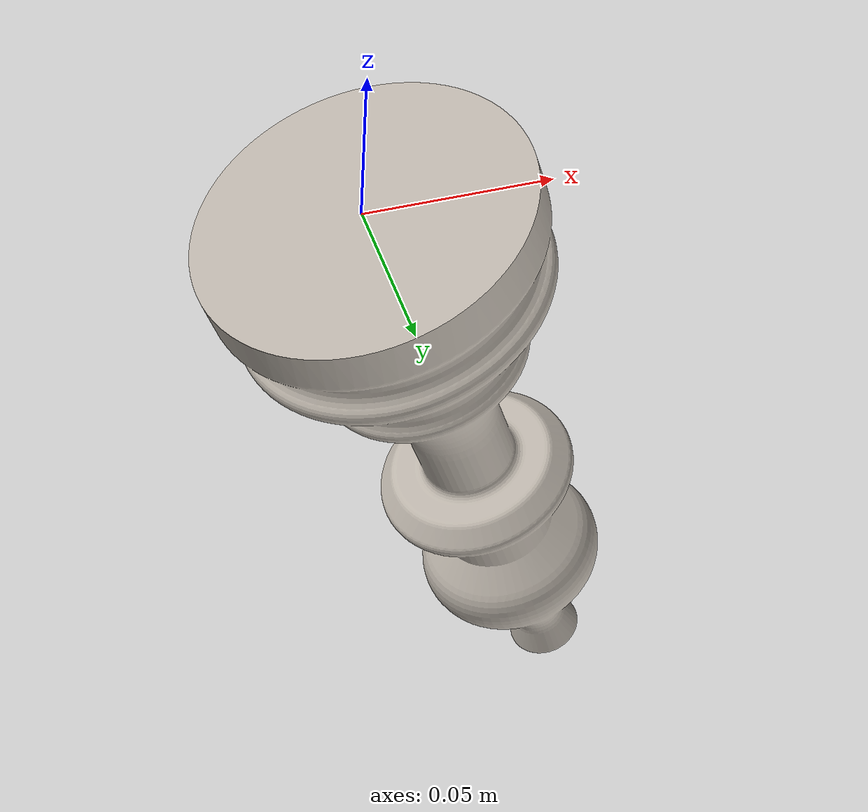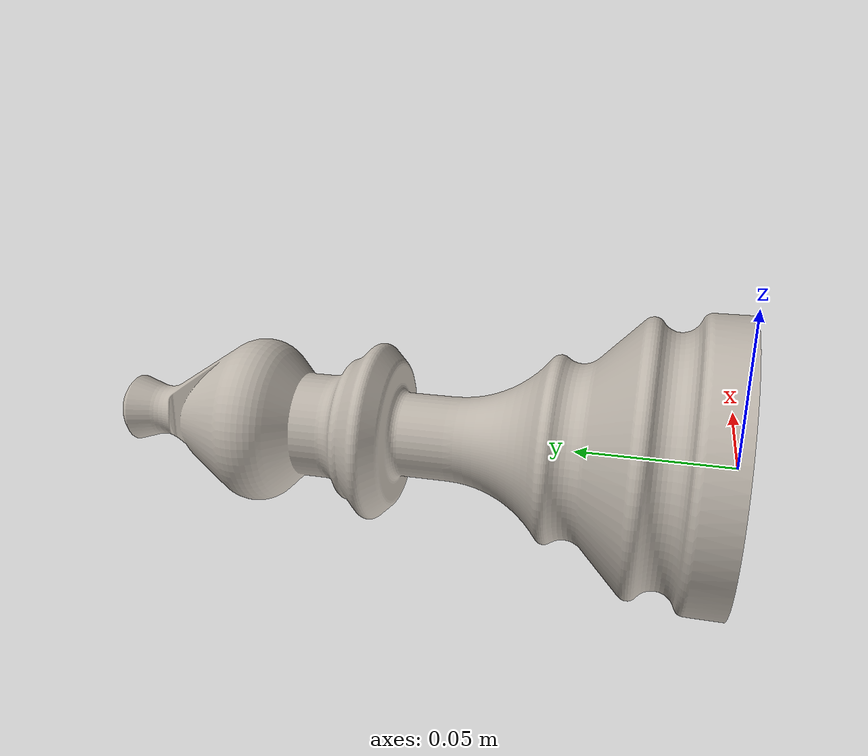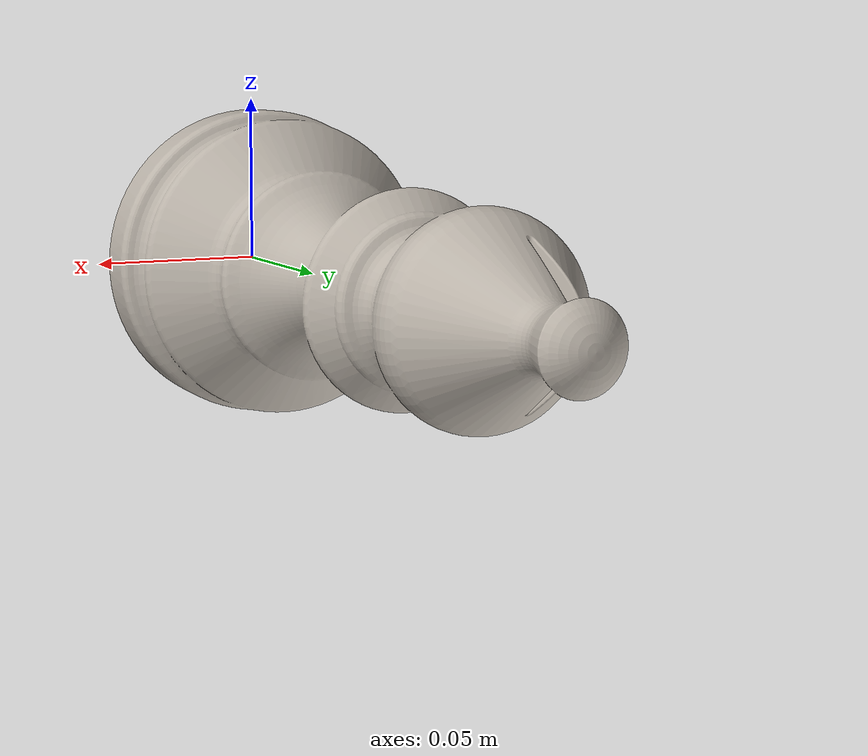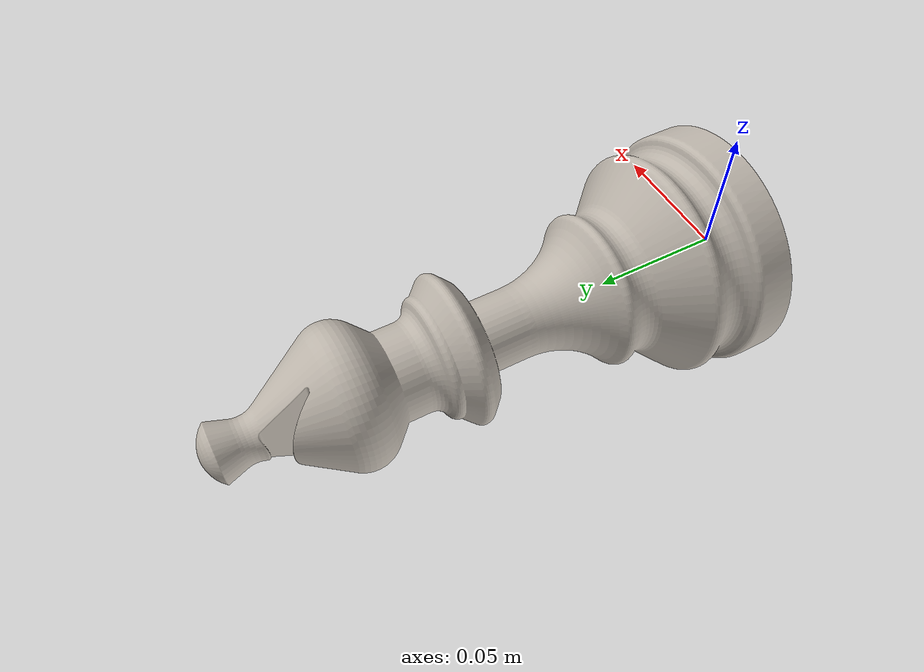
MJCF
<mujoco model="bishop">
  <asset>
    <mesh file="meshes/bishop.stl" name="bishop_mesh" scale="0.001 0.001 0.001"/>
    <texture file="../textures/chess_texture.png" type="2d" name="tex-bishop" />
    <material name="mat-bishop" reflectance="0.2" texrepeat="1 1" texture="tex-bishop" texuniform="true"/>
  </asset>
  <worldbody>
    <body>
      <body name="object">
        <geom pos="0 0 0" mesh="bishop_mesh" type="mesh" solimp="0.998 0.998 0.001" solref="0.001 1" density="5000" friction="0.5 0.3 0.1" material="mat-bishop" group="0" condim="4"/>
      </body>
      <site rgba="0 0 0 0" size="0.005" pos="0 0 0" name="bishop_site"/>
    </body>
  </worldbody>
</mujoco>
